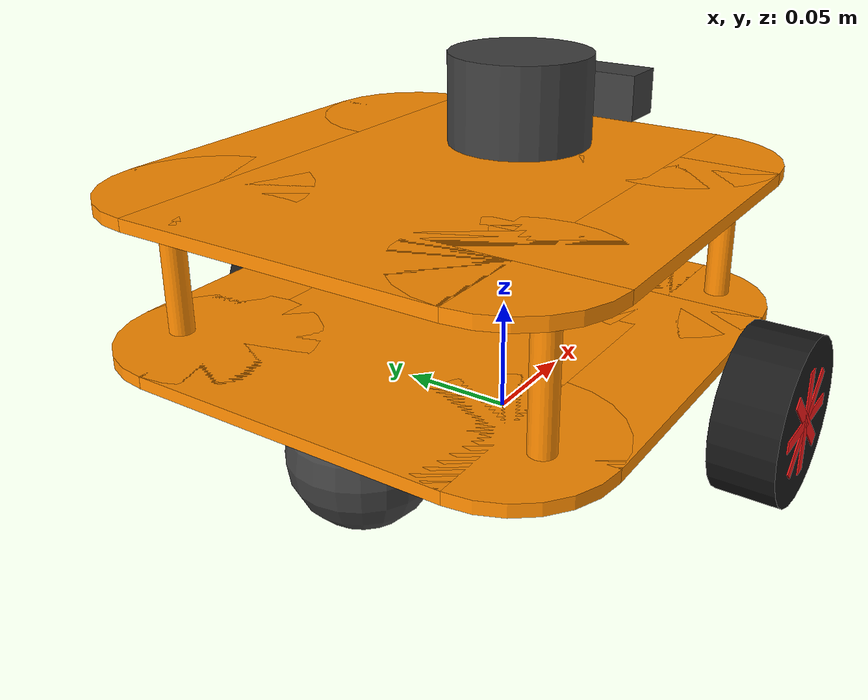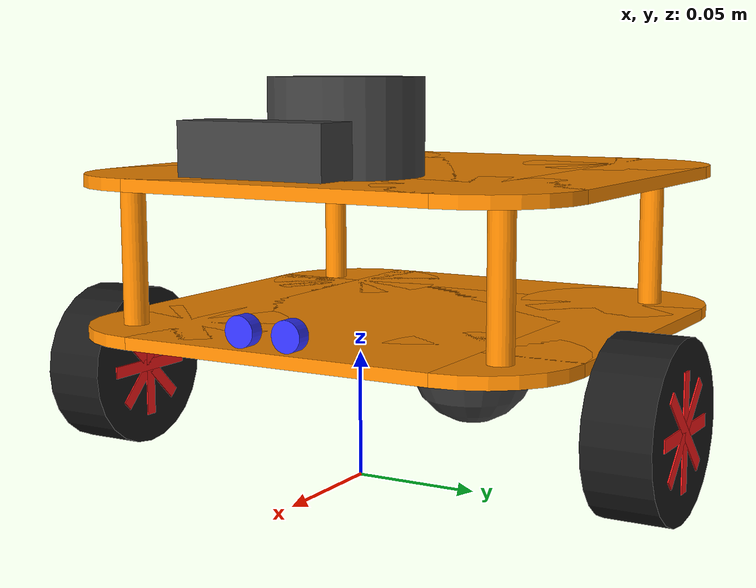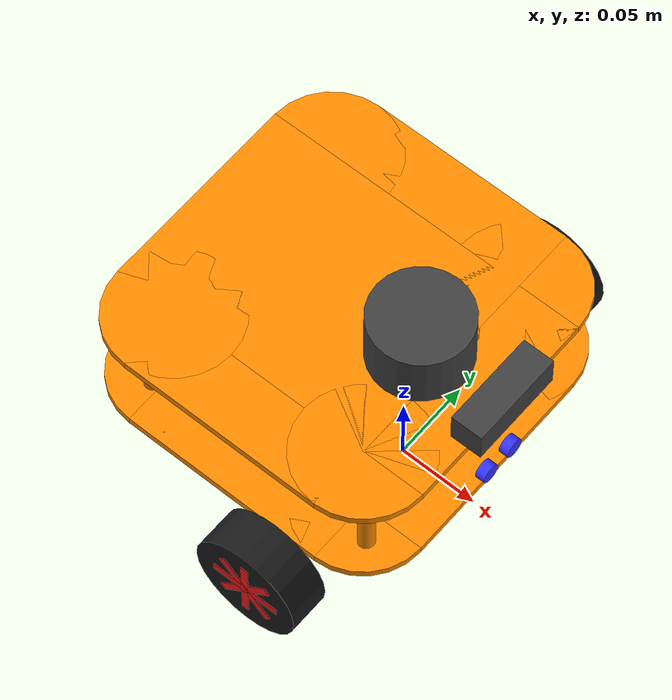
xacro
<?xml version="1.0"?>
<robot name="mobo_bot" xmlns:xacro="http://www.ros.org/wiki/xacro">

    <xacro:arg name="run_gz_sim" default="false"/>

    <material name="orange">
        <color rgba="1 0.55 0 1"/>
    </material>

    <material name="black">
        <color rgba="0.1 0.1 0.1 1"/>
    </material>

    <material name="silver">
        <color rgba="0.6 0.6 0.6 1"/>
    </material>

    <material name="grey">
        <color rgba="0.25 0.25 0.25 1"/>
    </material>

    <material name="blue">
        <color rgba="0.2 0.2 1 1"/>
    </material>

    <material name="red">
        <color rgba="1 0.1 0.1 1"/>
    </material>

    <xacro:macro name="inertial_sphere" params="mass radius *origin">
        <inertial>
            <xacro:insert_block name="origin"/>
            <mass value="${mass}" />
            <inertia ixx="${(2/5) * mass * (radius*radius)}" ixy="0.0" ixz="0.0"
                    iyy="${(2/5) * mass * (radius*radius)}" iyz="0.0"
                    izz="${(2/5) * mass * (radius*radius)}" />
        </inertial>
    </xacro:macro>

    <xacro:macro name="inertial_box" params="mass x y z *origin">
        <inertial>
            <xacro:insert_block name="origin"/>
            <mass value="${mass}" />
            <inertia ixx="${(1/12) * mass * (y*y+z*z)}" ixy="0.0" ixz="0.0"
                    iyy="${(1/12) * mass * (x*x+z*z)}" iyz="0.0"
                    izz="${(1/12) * mass * (x*x+y*y)}" />
        </inertial>
    </xacro:macro>

    <xacro:macro name="inertial_cylinder" params="mass length radius *origin">
        <inertial>
            <xacro:insert_block name="origin"/>
            <mass value="${mass}" />
            <inertia ixx="${(1/12) * mass * (3*radius*radius + length*length)}" ixy="0.0" ixz="0.0"
                    iyy="${(1/12) * mass * (3*radius*radius + length*length)}" iyz="0.0"
                    izz="${(1/2) * mass * (radius*radius)}" />
        </inertial>
    </xacro:macro>

    <xacro:include filename="$(find mobo_bot_description)/urdf/urdf_models/box_with_fillet_macro.xacro"/>
    <xacro:include filename="$(find mobo_bot_description)/urdf/urdf_models/drive_wheel_macro.xacro"/>
    <xacro:include filename="$(find mobo_bot_description)/urdf/urdf_models/drive_wheel_rim_macro.xacro"/>
    <xacro:include filename="$(find mobo_bot_description)/urdf/urdf_models/sonar.xacro"/>
    <xacro:include filename="$(find mobo_bot_description)/urdf/urdf_models/lidar.xacro"/>
    <xacro:include filename="$(find mobo_bot_description)/urdf/urdf_models/cam.xacro"/>

    <xacro:property name="chassis_length" value="0.21"/>
    <xacro:property name="chassis_width" value="0.21"/>
    <xacro:property name="chassis_height" value="0.06"/>
    <xacro:property name="slab_height" value="0.005"/>
    <xacro:property name="chassis_mass" value="2.0"/>
    <xacro:property name="chassis_color" value="orange"/>

    <xacro:property name="wheel_seperation" value="0.24"/>
    <xacro:property name="wheel_radius" value="0.034"/>
    <xacro:property name="wheel_width" value="0.026"/>
    <xacro:property name="wheel_mass" value="0.08"/>

    <xacro:property name="wheel_height_offset" value="0.024"/>

    <xacro:property name="castor_wheel_diameter" value="${wheel_radius+wheel_height_offset}"/>
    <xacro:property name="castor_wheel_mass" value="0.08"/>

    <link name="base_link">
    </link>

    <joint name="chassis_joint" type="fixed">
        <parent link="base_link"/>
        <child link="chassis"/>
        <origin xyz="0 0 ${wheel_radius+wheel_height_offset}"/>
    </joint>

    <link name="chassis">
        <xacro:insert_box_with_fillet x="-0.040" y="0" z="0"
            size_x="${chassis_length}" size_y="${chassis_width}" size_z="${slab_height}"
            fillet_radius="0.04"/>
        <xacro:insert_box_with_fillet x="-0.040" y="0" z="${chassis_height}"
            size_x="${chassis_length}" size_y="${chassis_width}" size_z="${slab_height}"
            fillet_radius="0.04"/>

        <visual>
            <origin xyz="0.04 0.08 ${chassis_height/2}" rpy="0 0 0"/>
            <geometry>
                <cylinder radius="0.005" length="${chassis_height}"/>
            </geometry>
            <material name="orange"/>
        </visual>
        <visual>
            <origin xyz="0.04 -0.08 ${chassis_height/2}" rpy="0 0 0"/>
            <geometry>
                <cylinder radius="0.005" length="${chassis_height}"/>
            </geometry>
            <material name="orange"/>
        </visual>

        <visual>
            <origin xyz="-0.11 0.08 ${chassis_height/2}" rpy="0 0 0"/>
            <geometry>
                <cylinder radius="0.005" length="${chassis_height}"/>
            </geometry>
            <material name="orange"/>
        </visual>
        <visual>
            <origin xyz="-0.11 -0.08 ${chassis_height/2}" rpy="0 0 0"/>
            <geometry>
                <cylinder radius="0.005" length="${chassis_height}"/>
            </geometry>
            <material name="orange"/>
        </visual>

        <collision>
           <origin xyz="-0.02 0 ${chassis_height/2}" rpy="0 0 0"/>
            <geometry>
                <box size="${chassis_length} ${chassis_width} ${chassis_height}"/>
            </geometry>
        </collision>
        <xacro:inertial_box mass="${chassis_mass}" x="${chassis_length}" y="${chassis_width}" z="${chassis_height}">
            <origin xyz="-0.06 0 ${chassis_height/2}" rpy="0 0 0"/>
        </xacro:inertial_box>
    </link>

    <xacro:insert_drive_wheel
        base_name="left_wheel"
        parent_name="base_link"
        x="0" y="${wheel_seperation/2}" z="${wheel_radius}"
        mass="${wheel_mass}"
        radius="${wheel_radius}"
        thickness="${wheel_width}"/>

    <xacro:insert_drive_wheel_rim
        base_name="left_rim"
        parent_name="left_wheel"
        radius="${wheel_radius}"
        thickness="${wheel_width}"
        spoke_width="0.005"/>

    <xacro:insert_drive_wheel
        base_name="right_wheel"
        parent_name="base_link"
        x="0" y="${-wheel_seperation/2}" z="${wheel_radius}"
        mass="${wheel_mass}"
        radius="${wheel_radius}"
        thickness="${wheel_width}"/>

    <xacro:insert_drive_wheel_rim
        base_name="right_rim"
        parent_name="right_wheel"
        radius="${wheel_radius}"
        thickness="${wheel_width}"
        spoke_width="0.005"/>

    <joint name="castor_wheel_joint" type="fixed">
        <parent link="base_link"/>
        <child link="castor_wheel"/>
        <origin xyz="-0.1 0 ${castor_wheel_diameter/2}"/>
    </joint>

    <link name="castor_wheel">
        <visual>
            <origin xyz="0 0 0" rpy="0 0 0"/>
            <geometry>
                <sphere radius="${castor_wheel_diameter/2}" />
            </geometry>
            <material name="grey">
                <color rgba="0.25 0.25 0.25 1"/>
            </material>
        </visual>
        <collision>
           <origin xyz="0 0 0" rpy="0 0 0"/>
            <geometry>
                <sphere radius="${castor_wheel_diameter/2}" />
            </geometry>
        </collision>
        <xacro:inertial_sphere mass="${castor_wheel_mass}" radius="${castor_wheel_diameter/2}">
            <origin xyz="0 0 0" rpy="0 0 0"/>
        </xacro:inertial_sphere>
    </link>

    <xacro:property name="lidar_z_offset" value="0.04"/>
    <xacro:insert_lidar
        base_name="lidar"
        parent_name="chassis"
        x="0.01" y="0" z="${chassis_height+lidar_z_offset}"
        mass="0.1"/>

    <joint name="imu_joint" type="fixed">
        <parent link="chassis"/>
        <child link="imu"/>
        <origin xyz="0 0 ${chassis_height}"/>
    </joint>

    <link name="imu"></link>

    <xacro:insert_sonar
        base_name="sonar"
        parent_name="chassis"
        x="0.065" y="0" z="${chassis_height/6}"
        mass="0.005"/>

    <xacro:insert_camera
        base_name="camera"
        parent_name="chassis"
        x="0.075" y="0" z="${chassis_height+0.015}"
        mass="0.005" tilt_angle="0.00"/>

    <xacro:if value="$(arg run_gz_sim)">
        <xacro:include filename="$(find mobo_bot_description)/urdf/gazebo_properties.xacro" />
    </xacro:if>
    <xacro:unless value="$(arg run_gz_sim)">
        <xacro:include filename="$(find mobo_bot_description)/urdf/epmc_ros2_control.xacro" />
    </xacro:unless>

</robot>

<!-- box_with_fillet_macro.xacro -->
<robot xmlns:xacro="http://www.ros.org/wiki/xacro" >

    <xacro:macro name="insert_box_with_fillet" params="x y z size_x size_y size_z fillet_radius">
        <visual>
            <origin xyz="${x} ${y} ${z}" rpy="0 0 0"/>
            <geometry>
                <box size="${size_x} ${size_y-(2*fillet_radius)} ${size_z}"/>
            </geometry>
            <material name="orange">
              <color rgba="1 0.55 0 1"/>
            </material>
        </visual>
        <visual>
            <origin xyz="${x} ${y} ${z}" rpy="0 0 0"/>
            <geometry>
                <box size="${size_x-(2*fillet_radius)} ${size_y} ${size_z}"/>
            </geometry>
            <material name="orange">
              <color rgba="1 0.55 0 1"/>
            </material>
        </visual>
        <visual>
            <origin xyz="${x+((size_x/2)-fillet_radius)} ${y+((size_y/2)-fillet_radius)} ${z}" rpy="0 0 0"/>
            <geometry>
                <cylinder length="${size_z}" radius="${fillet_radius}"/>
            </geometry>
            <material name="orange">
              <color rgba="1 0.55 0 1"/>
            </material>
        </visual>
        <visual>
            <origin xyz="${x+((size_x/2)-fillet_radius)} ${y-((size_y/2)-fillet_radius)} ${z}" rpy="0 0 0"/>
            <geometry>
                <cylinder length="${size_z}" radius="${fillet_radius}"/>
            </geometry>
            <material name="orange">
              <color rgba="1 0.55 0 1"/>
            </material>
        </visual>
        <visual>
            <origin xyz="${x-((size_x/2)-fillet_radius)} ${y+((size_y/2)-fillet_radius)} ${z}" rpy="0 0 0"/>
            <geometry>
                <cylinder length="${size_z}" radius="${fillet_radius}"/>
            </geometry>
            <material name="orange">
              <color rgba="1 0.55 0 1"/>
            </material>
        </visual>
        <visual>
            <origin xyz="${x-((size_x/2)-fillet_radius)} ${y-((size_y/2)-fillet_radius)} ${z}" rpy="0 0 0"/>
            <geometry>
                <cylinder length="${size_z}" radius="${fillet_radius}"/>
            </geometry>
            <material name="orange">
              <color rgba="1 0.55 0 1"/>
            </material>
        </visual>
    </xacro:macro>

</robot>

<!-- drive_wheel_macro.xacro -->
<robot xmlns:xacro="http://www.ros.org/wiki/xacro" >

    <xacro:macro name="inertial_cylinder" params="mass length radius *origin">
        <inertial>
            <xacro:insert_block name="origin"/>
            <mass value="${mass}" />
            <inertia ixx="${(1/12) * mass * (3*radius*radius + length*length)}" ixy="0.0" ixz="0.0"
                    iyy="${(1/12) * mass * (3*radius*radius + length*length)}" iyz="0.0"
                    izz="${(1/2) * mass * (radius*radius)}" />
        </inertial>
    </xacro:macro>

    <xacro:macro name="insert_drive_wheel" params="base_name parent_name x y z mass radius thickness">
        <joint name="${base_name}_joint" type="continuous">
            <parent link="${parent_name}"/>
            <child link="${base_name}"/>
            <origin xyz="${x} ${y} ${z}" rpy="${-pi/2} 0 0"/>
            <axis xyz="0 0 1"/>
            <dynamics damping="0.2"/>
        </joint>

        <link name="${base_name}">
            <visual>
                <origin xyz="0 0 0" rpy="0 0 0"/>
                <geometry>
                    <cylinder radius="${radius}" length="${thickness}"/>
                </geometry>
                <material name="black">
                    <color rgba="0.1 0.1 0.1 1"/>
                </material>
            </visual>
            <collision>
            <origin xyz="0 0 0" rpy="0 0 0"/>
                <geometry>
                    <cylinder radius="${radius}" length="${thickness}"/>
                </geometry>
            </collision>
            <xacro:inertial_cylinder mass="${mass}" length="${thickness}" radius="${radius}">
                <origin xyz="0 0 0" rpy="0 0 0"/>
            </xacro:inertial_cylinder>
        </link>

    </xacro:macro>

</robot>

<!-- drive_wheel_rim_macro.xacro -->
<robot xmlns:xacro="http://www.ros.org/wiki/xacro" >

    <xacro:macro name="insert_drive_wheel_rim" params="base_name parent_name radius thickness spoke_width">

        <joint name="${base_name}_joint" type="fixed">
            <parent link="${parent_name}"/>
            <child link="${base_name}"/>
            <origin xyz="0 0 0" rpy="0 0 0"/>
        </joint>

        <link name="${base_name}">
            <visual>
                <origin xyz="0 0 0" rpy="0 0 0"/>
                <geometry>
                    <box size="${spoke_width} ${radius*1.3} ${thickness+0.001}"/>
                </geometry>
                <material name="red">
                    <color rgba="1 0.1 0.1 1"/>
                </material>
            </visual>
            <visual>
                <origin xyz="0 0 0" rpy="0 0 ${pi/2}"/>
                <geometry>
                    <box size="${spoke_width} ${radius*1.3} ${thickness+0.001}"/>
                </geometry>
                <material name="red">
                    <color rgba="1 0.1 0.1 1"/>
                </material>
            </visual>
            <visual>
                <origin xyz="0 0 0" rpy="0 0 ${-pi/4}"/>
                <geometry>
                    <box size="${spoke_width} ${radius*1.3} ${thickness+0.001}"/>
                </geometry>
                <material name="red">
                    <color rgba="1 0.1 0.1 1"/>
                </material>
            </visual>
            <visual>
                <origin xyz="0 0 0" rpy="0 0 ${pi/4}"/>
                <geometry>
                    <box size="${spoke_width} ${radius*1.3} ${thickness+0.001}"/>
                </geometry>
                <material name="red">
                    <color rgba="1 0.1 0.1 1"/>
                </material>
            </visual>
        </link>

    </xacro:macro>

</robot>

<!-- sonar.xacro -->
<robot xmlns:xacro="http://www.ros.org/wiki/xacro">

    <xacro:macro name="insert_sonar" params="base_name parent_name x y z mass">
        <joint name="${base_name}_joint" type="fixed">
            <parent link="${parent_name}"/>
            <child link="${base_name}"/>
            <origin xyz="${x} ${y} ${z}" rpy="0 0 0"/>
        </joint>

        <link name="${base_name}">
            <visual>
                <origin xyz="0 0.01 0" rpy="0 ${pi/2} 0"/>
                <geometry>
                    <cylinder radius="0.006" length="0.006"/>
                </geometry>
                <material name="blue">
                    <color rgba="0.2 0.2 1 1"/>
                </material>
            </visual>
            <collision>
                <origin xyz="0 0.01 0" rpy="0 ${pi/2} 0"/>
                <geometry>
                    <cylinder radius="0.006" length="0.006"/>
                </geometry>
            </collision>

            <visual>
                <origin xyz="0 -0.01 0" rpy="0 ${pi/2} 0"/>
                <geometry>
                    <cylinder radius="0.006" length="0.006"/>
                </geometry>
                <material name="blue">
                    <color rgba="0.2 0.2 1 1"/>
                </material>
            </visual>
            <collision>
                <origin xyz="0 -0.01 0" rpy="0 ${pi/2} 0"/>
                <geometry>
                    <cylinder radius="0.006" length="0.006"/>
                </geometry>
            </collision>

            <xacro:inertial_cylinder mass="${mass}" length="0.006" radius="0.006">
                <origin xyz="0 0.01 0" rpy="0 ${pi/2} 0"/>
            </xacro:inertial_cylinder>
        </link>
    </xacro:macro>

</robot>

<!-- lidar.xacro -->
<robot xmlns:xacro="http://www.ros.org/wiki/xacro" >

    <xacro:macro name="insert_lidar" params="base_name parent_name x y z mass">
        <joint name="${base_name}_joint" type="fixed">
            <parent link="${parent_name}"/>
            <child link="${base_name}"/>
            <origin xyz="${x} ${y} ${z}" rpy="0 0 0"/>
        </joint>

        <link name="${base_name}">
            <visual>
                <origin xyz="0 0 -0.02"/>
                <geometry>
                    <cylinder radius="0.03" length="0.04"/>
                </geometry>
                <material name="grey">
                    <color rgba="0.25 0.25 0.25 1"/>
                </material>
            </visual>
            <collision>
                <origin xyz="0 0 -0.02"/>
                <geometry>
                    <cylinder radius="0.03" length="0.04"/>
                </geometry>
            </collision>
            <xacro:inertial_cylinder mass="${mass}" length="0.04" radius="0.03">
                <origin xyz="0 0 -0.02" rpy="0 0 0"/>
            </xacro:inertial_cylinder>
        </link>
    </xacro:macro>

</robot>

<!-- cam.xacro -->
<robot xmlns:xacro="http://www.ros.org/wiki/xacro" >

    <xacro:macro name="insert_camera" params="base_name parent_name x y z mass tilt_angle">
        <joint name="${base_name}_joint" type="fixed">
            <parent link="${parent_name}"/>
            <child link="${base_name}"/>
            <origin xyz="${x} ${y} ${z}" rpy="0 ${tilt_angle} 0"/>
        </joint>

        <link name="${base_name}">
            <visual>
                <origin xyz="-0.01 0 0" rpy="0 0 0"/>
                <geometry>
                    <box size="0.02 0.06 0.02"/>
                </geometry>
                <material name="grey">
                    <color rgba="0.25 0.25 0.25 1"/>
                </material>
            </visual>

            <collision>
                <origin xyz="-0.01 0 0" rpy="0 0 0"/>
                <geometry>
                    <box size="0.02 0.06 0.02"/>
                </geometry>
            </collision>
            <xacro:inertial_box mass="${mass}" x="0.02" y="0.06" z="0.02">
                <origin xyz="-0.01 0 0" rpy="0 0 0"/>
            </xacro:inertial_box>
        </link>

        <joint name="${base_name}_optical_joint" type="fixed">
            <parent link="${base_name}"/>
            <child link="${base_name}_optical"/>
            <origin xyz="0 0 0" rpy="${-pi/2} 0 ${-pi/2}"/>
        </joint>

        <link name="${base_name}_optical"/>

    </xacro:macro>

</robot>
